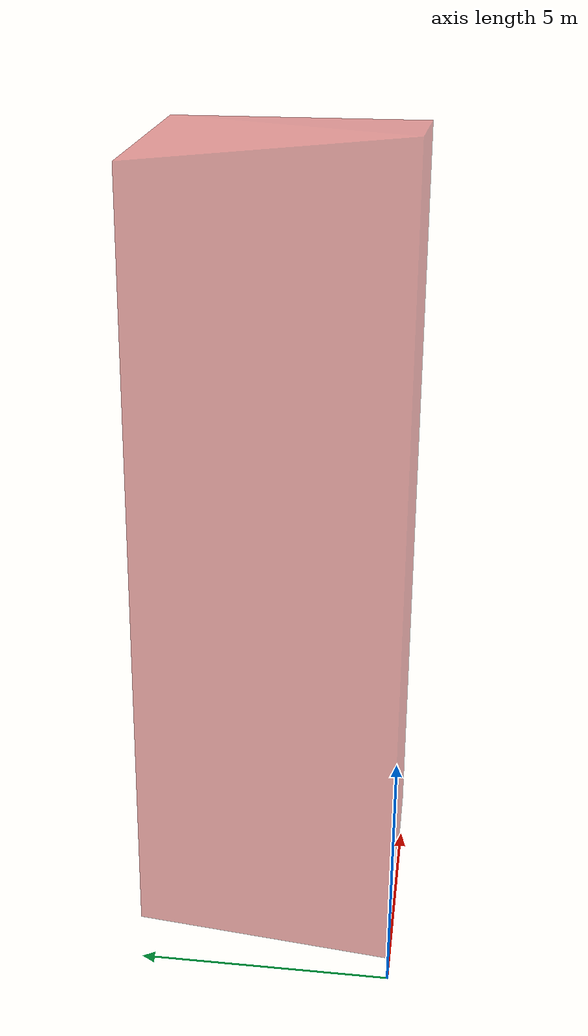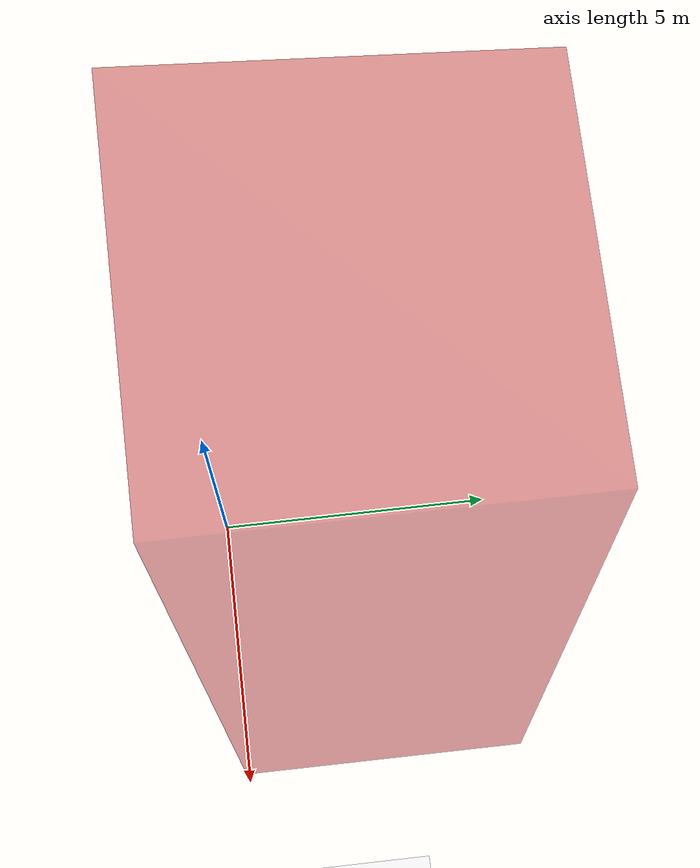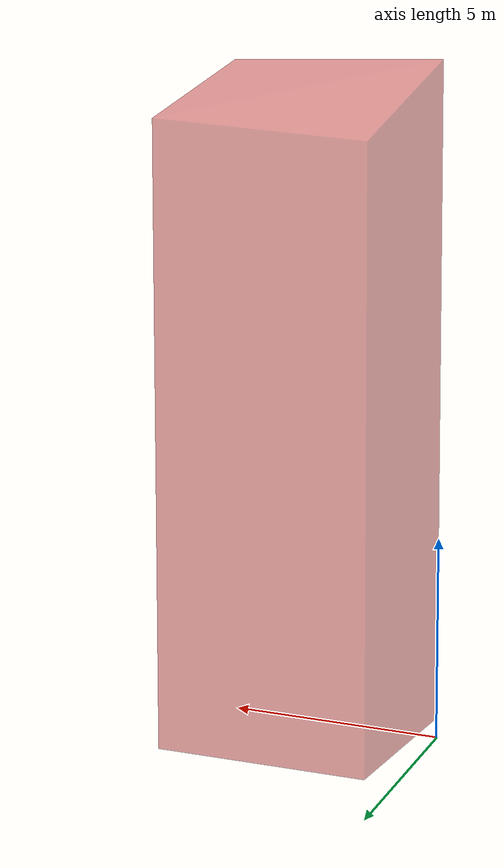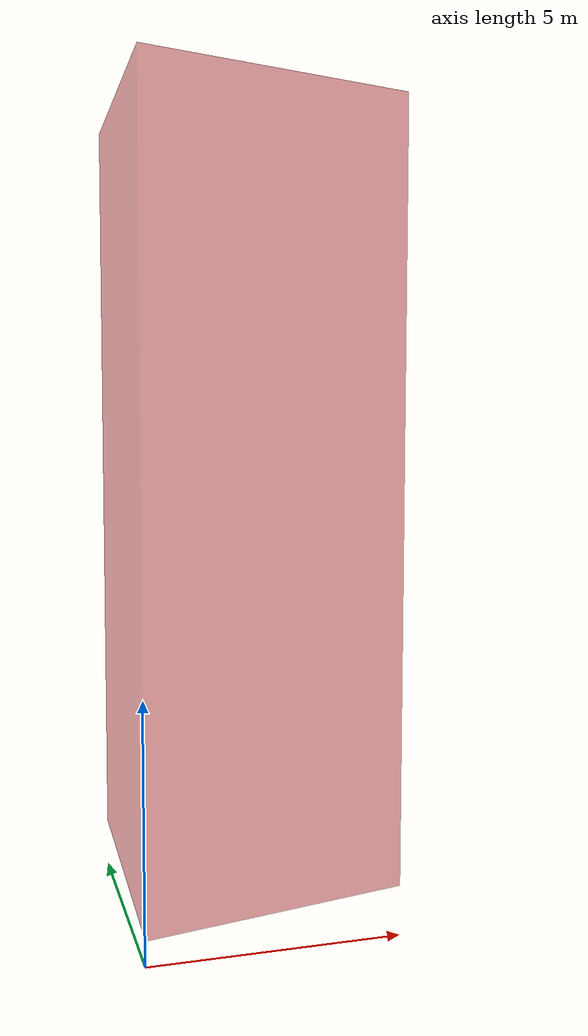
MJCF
<mujoco>
    <option density="1.2" viscosity="2e-05" wind="0 0 0"/>
    <worldbody>
        <light name="top" pos="0 0 5"/>
        <!-- Body -->

    <body name="body" pos="0 0 1" euler="0 0 0">
        <freejoint/>
        <!-- Main Wing -->
        <geom name="stl-wing"  density="1.67" rgba="0.8 0.2 0.2 0.5" type="mesh" mesh="stl-wing-mesh"/>
        <camera name="fixed" pos="-100 -100 -10" xyaxes="1 0 0 0 1 2"/>
        <camera name="track" pos="0 0 0" xyaxes="1 2 0 0 1 2" mode="track"/>
    </body>

        <!-- Landing Platform -->
        <body name="platform" pos="0 0 0">
            <geom name="platform-geom" type="box" size="1500 1500 1" rgba="1 1 1 1" pos="0 0 -80"/>
        </body>
    </worldbody>

            <asset>
                <mesh name="stl-wing-mesh" vertex="0.0 0.0 0.0 1.0 0.0 0.0 2.0 0.0 0.0 3.0 0.0 0.0 4.0 0.0 0.0 5.0 0.0 0.0 5.0 1.0 0.0 5.0 2.0 0.0 5.0 3.0 0.0 5.0 4.0 0.0 5.0 5.0 0.0 4.0 5.0 0.0 3.0 5.0 0.0 2.0 5.0 0.0 1.0 5.0 0.0 0.0 5.0 0.0 0.0 4.0 0.0 0.0 3.0 0.0 0.0 2.0 0.0 0.0 1.0 0.0 0.0 0.0 0.5 1.0 0.0 0.5 2.0 0.0 0.5 3.0 0.0 0.5 4.0 0.0 0.5 5.0 0.0 0.5 5.0 1.0 0.5 5.0 2.0 0.5 5.0 3.0 0.5 5.0 4.0 0.5 5.0 5.0 0.5 4.0 5.0 0.5 3.0 5.0 0.5 2.0 5.0 0.5 1.0 5.0 0.5 0.0 5.0 0.5 0.0 4.0 0.5 0.0 3.0 0.5 0.0 2.0 0.5 0.0 1.0 0.5 0.0 0.0 1.0 1.0 0.0 1.0 2.0 0.0 1.0 3.0 0.0 1.0 4.0 0.0 1.0 5.0 0.0 1.0 5.0 1.0 1.0 5.0 2.0 1.0 5.0 3.0 1.0 5.0 4.0 1.0 5.0 5.0 1.0 4.0 5.0 1.0 3.0 5.0 1.0 2.0 5.0 1.0 1.0 5.0 1.0 0.0 5.0 1.0 0.0 4.0 1.0 0.0 3.0 1.0 0.0 2.0 1.0 0.0 1.0 1.0 0.0 0.0 1.5 1.0 0.0 1.5 2.0 0.0 1.5 3.0 0.0 1.5 4.0 0.0 1.5 5.0 0.0 1.5 5.0 1.0 1.5 5.0 2.0 1.5 5.0 3.0 1.5 5.0 4.0 1.5 5.0 5.0 1.5 4.0 5.0 1.5 3.0 5.0 1.5 2.0 5.0 1.5 1.0 5.0 1.5 0.0 5.0 1.5 0.0 4.0 1.5 0.0 3.0 1.5 0.0 2.0 1.5 0.0 1.0 1.5 0.0 0.0 2.0 1.0 0.0 2.0 2.0 0.0 2.0 3.0 0.0 2.0 4.0 0.0 2.0 5.0 0.0 2.0 5.0 1.0 2.0 5.0 2.0 2.0 5.0 3.0 2.0 5.0 4.0 2.0 5.0 5.0 2.0 4.0 5.0 2.0 3.0 5.0 2.0 2.0 5.0 2.0 1.0 5.0 2.0 0.0 5.0 2.0 0.0 4.0 2.0 0.0 3.0 2.0 0.0 2.0 2.0 0.0 1.0 2.0 0.0 0.0 2.5 1.0 0.0 2.5 2.0 0.0 2.5 3.0 0.0 2.5 4.0 0.0 2.5 5.0 0.0 2.5 5.0 1.0 2.5 5.0 2.0 2.5 5.0 3.0 2.5 5.0 4.0 2.5 5.0 5.0 2.5 4.0 5.0 2.5 3.0 5.0 2.5 2.0 5.0 2.5 1.0 5.0 2.5 0.0 5.0 2.5 0.0 4.0 2.5 0.0 3.0 2.5 0.0 2.0 2.5 0.0 1.0 2.5 0.0 0.0 3.0 1.0 0.0 3.0 2.0 0.0 3.0 3.0 0.0 3.0 4.0 0.0 3.0 5.0 0.0 3.0 5.0 1.0 3.0 5.0 2.0 3.0 5.0 3.0 3.0 5.0 4.0 3.0 5.0 5.0 3.0 4.0 5.0 3.0 3.0 5.0 3.0 2.0 5.0 3.0 1.0 5.0 3.0 0.0 5.0 3.0 0.0 4.0 3.0 0.0 3.0 3.0 0.0 2.0 3.0 0.0 1.0 3.0 0.0 0.0 3.5 1.0 0.0 3.5 2.0 0.0 3.5 3.0 0.0 3.5 4.0 0.0 3.5 5.0 0.0 3.5 5.0 1.0 3.5 5.0 2.0 3.5 5.0 3.0 3.5 5.0 4.0 3.5 5.0 5.0 3.5 4.0 5.0 3.5 3.0 5.0 3.5 2.0 5.0 3.5 1.0 5.0 3.5 0.0 5.0 3.5 0.0 4.0 3.5 0.0 3.0 3.5 0.0 2.0 3.5 0.0 1.0 3.5 0.0 0.0 4.0 1.0 0.0 4.0 2.0 0.0 4.0 3.0 0.0 4.0 4.0 0.0 4.0 5.0 0.0 4.0 5.0 1.0 4.0 5.0 2.0 4.0 5.0 3.0 4.0 5.0 4.0 4.0 5.0 5.0 4.0 4.0 5.0 4.0 3.0 5.0 4.0 2.0 5.0 4.0 1.0 5.0 4.0 0.0 5.0 4.0 0.0 4.0 4.0 0.0 3.0 4.0 0.0 2.0 4.0 0.0 1.0 4.0 0.0 0.0 4.5 1.0 0.0 4.5 2.0 0.0 4.5 3.0 0.0 4.5 4.0 0.0 4.5 5.0 0.0 4.5 5.0 1.0 4.5 5.0 2.0 4.5 5.0 3.0 4.5 5.0 4.0 4.5 5.0 5.0 4.5 4.0 5.0 4.5 3.0 5.0 4.5 2.0 5.0 4.5 1.0 5.0 4.5 0.0 5.0 4.5 0.0 4.0 4.5 0.0 3.0 4.5 0.0 2.0 4.5 0.0 1.0 4.5 0.0 0.0 5.0 1.0 0.0 5.0 2.0 0.0 5.0 3.0 0.0 5.0 4.0 0.0 5.0 5.0 0.0 5.0 5.0 1.0 5.0 5.0 2.0 5.0 5.0 3.0 5.0 5.0 4.0 5.0 5.0 5.0 5.0 4.0 5.0 5.0 3.0 5.0 5.0 2.0 5.0 5.0 1.0 5.0 5.0 0.0 5.0 5.0 0.0 4.0 5.0 0.0 3.0 5.0 0.0 2.0 5.0 0.0 1.0 5.0 0.0 0.0 5.5 1.0 0.0 5.5 2.0 0.0 5.5 3.0 0.0 5.5 4.0 0.0 5.5 5.0 0.0 5.5 5.0 1.0 5.5 5.0 2.0 5.5 5.0 3.0 5.5 5.0 4.0 5.5 5.0 5.0 5.5 4.0 5.0 5.5 3.0 5.0 5.5 2.0 5.0 5.5 1.0 5.0 5.5 0.0 5.0 5.5 0.0 4.0 5.5 0.0 3.0 5.5 0.0 2.0 5.5 0.0 1.0 5.5 0.0 0.0 6.0 1.0 0.0 6.0 2.0 0.0 6.0 3.0 0.0 6.0 4.0 0.0 6.0 5.0 0.0 6.0 5.0 1.0 6.0 5.0 2.0 6.0 5.0 3.0 6.0 5.0 4.0 6.0 5.0 5.0 6.0 4.0 5.0 6.0 3.0 5.0 6.0 2.0 5.0 6.0 1.0 5.0 6.0 0.0 5.0 6.0 0.0 4.0 6.0 0.0 3.0 6.0 0.0 2.0 6.0 0.0 1.0 6.0 0.0 0.0 6.5 1.0 0.0 6.5 2.0 0.0 6.5 3.0 0.0 6.5 4.0 0.0 6.5 5.0 0.0 6.5 5.0 1.0 6.5 5.0 2.0 6.5 5.0 3.0 6.5 5.0 4.0 6.5 5.0 5.0 6.5 4.0 5.0 6.5 3.0 5.0 6.5 2.0 5.0 6.5 1.0 5.0 6.5 0.0 5.0 6.5 0.0 4.0 6.5 0.0 3.0 6.5 0.0 2.0 6.5 0.0 1.0 6.5 0.0 0.0 7.0 1.0 0.0 7.0 2.0 0.0 7.0 3.0 0.0 7.0 4.0 0.0 7.0 5.0 0.0 7.0 5.0 1.0 7.0 5.0 2.0 7.0 5.0 3.0 7.0 5.0 4.0 7.0 5.0 5.0 7.0 4.0 5.0 7.0 3.0 5.0 7.0 2.0 5.0 7.0 1.0 5.0 7.0 0.0 5.0 7.0 0.0 4.0 7.0 0.0 3.0 7.0 0.0 2.0 7.0 0.0 1.0 7.0 0.0 0.0 7.5 1.0 0.0 7.5 2.0 0.0 7.5 3.0 0.0 7.5 4.0 0.0 7.5 5.0 0.0 7.5 5.0 1.0 7.5 5.0 2.0 7.5 5.0 3.0 7.5 5.0 4.0 7.5 5.0 5.0 7.5 4.0 5.0 7.5 3.0 5.0 7.5 2.0 5.0 7.5 1.0 5.0 7.5 0.0 5.0 7.5 0.0 4.0 7.5 0.0 3.0 7.5 0.0 2.0 7.5 0.0 1.0 7.5 0.0 0.0 8.0 1.0 0.0 8.0 2.0 0.0 8.0 3.0 0.0 8.0 4.0 0.0 8.0 5.0 0.0 8.0 5.0 1.0 8.0 5.0 2.0 8.0 5.0 3.0 8.0 5.0 4.0 8.0 5.0 5.0 8.0 4.0 5.0 8.0 3.0 5.0 8.0 2.0 5.0 8.0 1.0 5.0 8.0 0.0 5.0 8.0 0.0 4.0 8.0 0.0 3.0 8.0 0.0 2.0 8.0 0.0 1.0 8.0 0.0 0.0 8.5 1.0 0.0 8.5 2.0 0.0 8.5 3.0 0.0 8.5 4.0 0.0 8.5 5.0 0.0 8.5 5.0 1.0 8.5 5.0 2.0 8.5 5.0 3.0 8.5 5.0 4.0 8.5 5.0 5.0 8.5 4.0 5.0 8.5 3.0 5.0 8.5 2.0 5.0 8.5 1.0 5.0 8.5 0.0 5.0 8.5 0.0 4.0 8.5 0.0 3.0 8.5 0.0 2.0 8.5 0.0 1.0 8.5 0.0 0.0 9.0 1.0 0.0 9.0 2.0 0.0 9.0 3.0 0.0 9.0 4.0 0.0 9.0 5.0 0.0 9.0 5.0 1.0 9.0 5.0 2.0 9.0 5.0 3.0 9.0 5.0 4.0 9.0 5.0 5.0 9.0 4.0 5.0 9.0 3.0 5.0 9.0 2.0 5.0 9.0 1.0 5.0 9.0 0.0 5.0 9.0 0.0 4.0 9.0 0.0 3.0 9.0 0.0 2.0 9.0 0.0 1.0 9.0 0.0 0.0 9.5 1.0 0.0 9.5 2.0 0.0 9.5 3.0 0.0 9.5 4.0 0.0 9.5 5.0 0.0 9.5 5.0 1.0 9.5 5.0 2.0 9.5 5.0 3.0 9.5 5.0 4.0 9.5 5.0 5.0 9.5 4.0 5.0 9.5 3.0 5.0 9.5 2.0 5.0 9.5 1.0 5.0 9.5 0.0 5.0 9.5 0.0 4.0 9.5 0.0 3.0 9.5 0.0 2.0 9.5 0.0 1.0 9.5 0.0 0.0 10.0 1.0 0.0 10.0 2.0 0.0 10.0 3.0 0.0 10.0 4.0 0.0 10.0 5.0 0.0 10.0 5.0 1.0 10.0 5.0 2.0 10.0 5.0 3.0 10.0 5.0 4.0 10.0 5.0 5.0 10.0 4.0 5.0 10.0 3.0 5.0 10.0 2.0 5.0 10.0 1.0 5.0 10.0 0.0 5.0 10.0 0.0 4.0 10.0 0.0 3.0 10.0 0.0 2.0 10.0 0.0 1.0 10.0 0.0 0.0 10.5 1.0 0.0 10.5 2.0 0.0 10.5 3.0 0.0 10.5 4.0 0.0 10.5 5.0 0.0 10.5 5.0 1.0 10.5 5.0 2.0 10.5 5.0 3.0 10.5 5.0 4.0 10.5 5.0 5.0 10.5 4.0 5.0 10.5 3.0 5.0 10.5 2.0 5.0 10.5 1.0 5.0 10.5 0.0 5.0 10.5 0.0 4.0 10.5 0.0 3.0 10.5 0.0 2.0 10.5 0.0 1.0 10.5 0.0 0.0 11.0 1.0 0.0 11.0 2.0 0.0 11.0 3.0 0.0 11.0 4.0 0.0 11.0 5.0 0.0 11.0 5.0 1.0 11.0 5.0 2.0 11.0 5.0 3.0 11.0 5.0 4.0 11.0 5.0 5.0 11.0 4.0 5.0 11.0 3.0 5.0 11.0 2.0 5.0 11.0 1.0 5.0 11.0 0.0 5.0 11.0 0.0 4.0 11.0 0.0 3.0 11.0 0.0 2.0 11.0 0.0 1.0 11.0 0.0 0.0 11.5 1.0 0.0 11.5 2.0 0.0 11.5 3.0 0.0 11.5 4.0 0.0 11.5 5.0 0.0 11.5 5.0 1.0 11.5 5.0 2.0 11.5 5.0 3.0 11.5 5.0 4.0 11.5 5.0 5.0 11.5 4.0 5.0 11.5 3.0 5.0 11.5 2.0 5.0 11.5 1.0 5.0 11.5 0.0 5.0 11.5 0.0 4.0 11.5 0.0 3.0 11.5 0.0 2.0 11.5 0.0 1.0 11.5 0.0 0.0 12.0 1.0 0.0 12.0 2.0 0.0 12.0 3.0 0.0 12.0 4.0 0.0 12.0 5.0 0.0 12.0 5.0 1.0 12.0 5.0 2.0 12.0 5.0 3.0 12.0 5.0 4.0 12.0 5.0 5.0 12.0 4.0 5.0 12.0 3.0 5.0 12.0 2.0 5.0 12.0 1.0 5.0 12.0 0.0 5.0 12.0 0.0 4.0 12.0 0.0 3.0 12.0 0.0 2.0 12.0 0.0 1.0 12.0 0.0 0.0 12.5 1.0 0.0 12.5 2.0 0.0 12.5 3.0 0.0 12.5 4.0 0.0 12.5 5.0 0.0 12.5 5.0 1.0 12.5 5.0 2.0 12.5 5.0 3.0 12.5 5.0 4.0 12.5 5.0 5.0 12.5 4.0 5.0 12.5 3.0 5.0 12.5 2.0 5.0 12.5 1.0 5.0 12.5 0.0 5.0 12.5 0.0 4.0 12.5 0.0 3.0 12.5 0.0 2.0 12.5 0.0 1.0 12.5 0.0 0.0 13.0 1.0 0.0 13.0 2.0 0.0 13.0 3.0 0.0 13.0 4.0 0.0 13.0 5.0 0.0 13.0 5.0 1.0 13.0 5.0 2.0 13.0 5.0 3.0 13.0 5.0 4.0 13.0 5.0 5.0 13.0 4.0 5.0 13.0 3.0 5.0 13.0 2.0 5.0 13.0 1.0 5.0 13.0 0.0 5.0 13.0 0.0 4.0 13.0 0.0 3.0 13.0 0.0 2.0 13.0 0.0 1.0 13.0 0.0 0.0 13.5 1.0 0.0 13.5 2.0 0.0 13.5 3.0 0.0 13.5 4.0 0.0 13.5 5.0 0.0 13.5 5.0 1.0 13.5 5.0 2.0 13.5 5.0 3.0 13.5 5.0 4.0 13.5 5.0 5.0 13.5 4.0 5.0 13.5 3.0 5.0 13.5 2.0 5.0 13.5 1.0 5.0 13.5 0.0 5.0 13.5 0.0 4.0 13.5 0.0 3.0 13.5 0.0 2.0 13.5 0.0 1.0 13.5 0.0 0.0 14.0 1.0 0.0 14.0 2.0 0.0 14.0 3.0 0.0 14.0 4.0 0.0 14.0 5.0 0.0 14.0 5.0 1.0 14.0 5.0 2.0 14.0 5.0 3.0 14.0 5.0 4.0 14.0 5.0 5.0 14.0 4.0 5.0 14.0 3.0 5.0 14.0 2.0 5.0 14.0 1.0 5.0 14.0 0.0 5.0 14.0 0.0 4.0 14.0 0.0 3.0 14.0 0.0 2.0 14.0 0.0 1.0 14.0 0.0 0.0 14.5 1.0 0.0 14.5 2.0 0.0 14.5 3.0 0.0 14.5 4.0 0.0 14.5 5.0 0.0 14.5 5.0 1.0 14.5 5.0 2.0 14.5 5.0 3.0 14.5 5.0 4.0 14.5 5.0 5.0 14.5 4.0 5.0 14.5 3.0 5.0 14.5 2.0 5.0 14.5 1.0 5.0 14.5 0.0 5.0 14.5 0.0 4.0 14.5 0.0 3.0 14.5 0.0 2.0 14.5 0.0 1.0 14.5 0.0 0.0 15.0 1.0 0.0 15.0 2.0 0.0 15.0 3.0 0.0 15.0 4.0 0.0 15.0 5.0 0.0 15.0 5.0 1.0 15.0 5.0 2.0 15.0 5.0 3.0 15.0 5.0 4.0 15.0 5.0 5.0 15.0 4.0 5.0 15.0 3.0 5.0 15.0 2.0 5.0 15.0 1.0 5.0 15.0 0.0 5.0 15.0 0.0 4.0 15.0 0.0 3.0 15.0 0.0 2.0 15.0 0.0 1.0 15.0 0.0 0.0 -0.5 0.0 0.0 15.5"/>
            </asset>
</mujoco>
